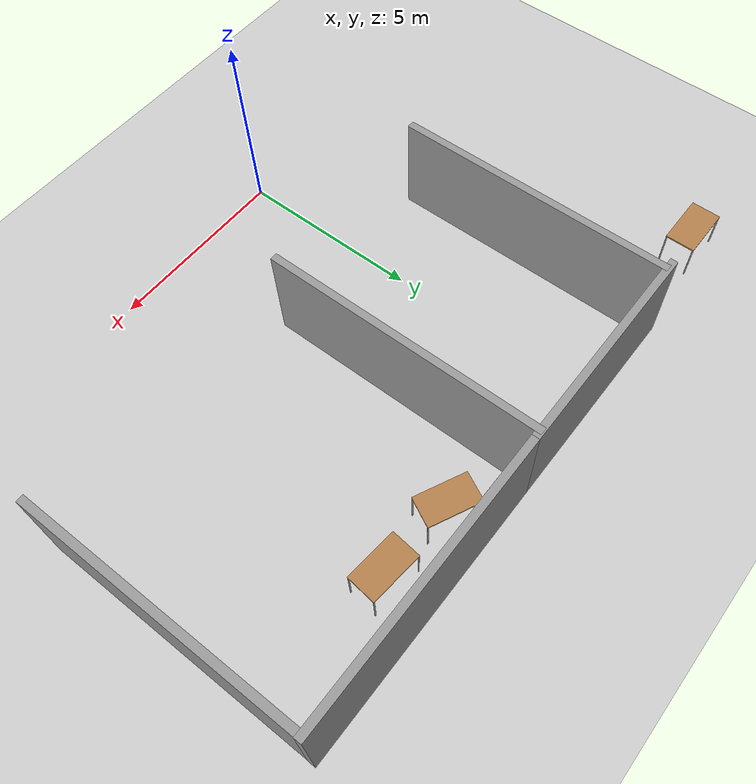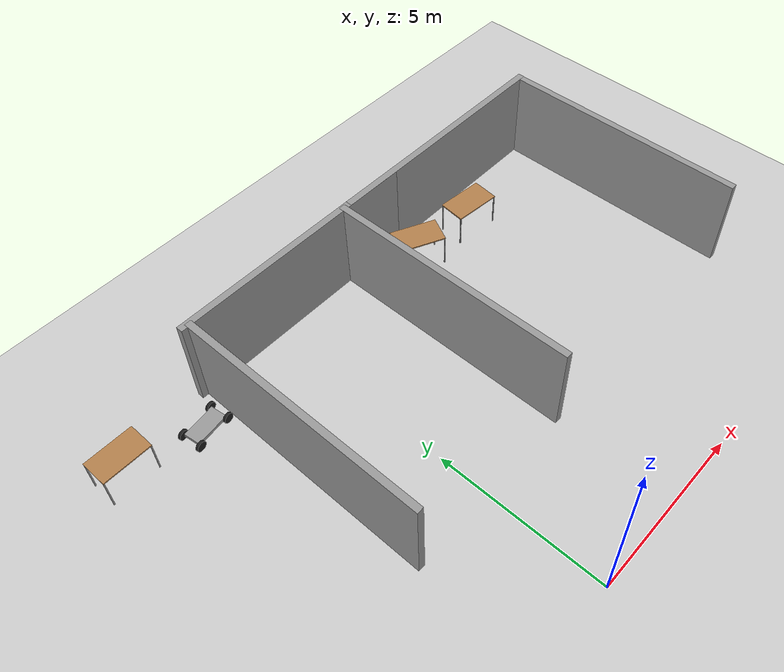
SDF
<sdf version="1.6">
 <world name="default">
  <model name="ground_plane">
   <static>1</static>
   <link name="link">
    <collision name="collision">
     <geometry><plane><normal>0 0 1</normal><size>100 100</size></plane></geometry>
     <surface><friction><ode><mu>100</mu><mu2>50</mu2></ode></friction></surface>
    </collision>
    <visual name="visual">
     <cast_shadows>0</cast_shadows>
     <geometry><plane><normal>0 0 1</normal><size>100 100</size></plane></geometry>
     <material>
      <script><uri>file://media/materials/scripts/gazebo.material</uri><name>Gazebo/Grey</name></script>
     </material>
    </visual>
   </link>
  </model>
  <model name="grey_wall_clone">
   <static>1</static>
   <link name="link">
    <pose>0 0 1.4 0 -0 0</pose>
    <collision name="collision"><geometry><box><size>7.5 0.2 2.8</size></box></geometry></collision>
    <visual name="visual">
     <cast_shadows>0</cast_shadows>
     <geometry><box><size>7.5 0.2 2.8</size></box></geometry>
     <material>
      <script>
       <uri>model://grey_wall/materials/scripts</uri>
       <uri>model://grey_wall/materials/textures</uri>
       <name>vrc/grey_wall</name>
      </script>
     </material>
    </visual>
   </link>
   <pose>1.00661 10.9168 -0.00011 0 -0 0</pose>
  </model>
  <model name="grey_wall_clone_0">
   <static>1</static>
   <link name="link">
    <pose>0 0 1.4 0 -0 0</pose>
    <collision name="collision"><geometry><box><size>7.5 0.2 2.8</size></box></geometry></collision>
    <visual name="visual">
     <cast_shadows>0</cast_shadows>
     <geometry><box><size>7.5 0.2 2.8</size></box></geometry>
     <material>
      <script>
       <uri>model://grey_wall/materials/scripts</uri>
       <uri>model://grey_wall/materials/textures</uri>
       <name>vrc/grey_wall</name>
      </script>
     </material>
    </visual>
   </link>
   <pose>6.74015 10.9183 0 0 -0 0</pose>
  </model>
  <model name="grey_wall_clone_1_clone_0">
   <static>1</static>
   <link name="link">
    <pose>0 0 1.4 0 -0 0</pose>
    <collision name="collision"><geometry><box><size>7.5 0.2 2.8</size></box></geometry></collision>
    <visual name="visual">
     <cast_shadows>0</cast_shadows>
     <geometry><box><size>7.5 0.2 2.8</size></box></geometry>
     <material>
      <script>
       <uri>model://grey_wall/materials/scripts</uri>
       <uri>model://grey_wall/materials/textures</uri>
       <name>vrc/grey_wall</name>
      </script>
     </material>
    </visual>
   </link>
   <pose>10.4003 7.24302 0 0 0 -1.56602</pose>
  </model>
  <model name="grey_wall_clone_1_clone_0_clone_1">
   <static>1</static>
   <link name="link">
    <pose>0 0 1.4 0 -0 0</pose>
    <collision name="collision"><geometry><box><size>7.5 0.2 2.8</size></box></geometry></collision>
    <visual name="visual">
     <cast_shadows>0</cast_shadows>
     <geometry><box><size>7.5 0.2 2.8</size></box></geometry>
     <material>
      <script>
       <uri>model://grey_wall/materials/scripts</uri>
       <uri>model://grey_wall/materials/textures</uri>
       <name>vrc/grey_wall</name>
      </script>
     </material>
    </visual>
   </link>
   <pose>-2.44809 7.18884 0 0 0 -1.56602</pose>
  </model>
  <model name="grey_wall_clone_1_clone_0_clone_1_clone">
   <static>1</static>
   <link name="link">
    <pose>0 0 1.4 0 -0 0</pose>
    <collision name="collision"><geometry><box><size>7.5 0.2 2.8</size></box></geometry></collision>
    <visual name="visual">
     <cast_shadows>0</cast_shadows>
     <geometry><box><size>7.5 0.2 2.8</size></box></geometry>
     <material>
      <script>
       <uri>model://grey_wall/materials/scripts</uri>
       <uri>model://grey_wall/materials/textures</uri>
       <name>vrc/grey_wall</name>
      </script>
     </material>
    </visual>
   </link>
   <pose>2.80527 7.23087 0 0 0 -1.56602</pose>
  </model>
  <model name="table_clone_4">
   <static>0</static>
   <link name="link">
    <collision name="surface">
     <pose>0 0 1 0 -0 0</pose>
     <geometry><box><size>1.5 0.8 0.03</size></box></geometry>
     <surface><friction><ode><mu>0.6</mu><mu2>0.6</mu2></ode></friction></surface>
    </collision>
    <visual name="visual1">
     <pose>0 0 1 0 -0 0</pose>
     <geometry><box><size>1.4 0.8 0.04</size></box></geometry>
     <material>
      <script><uri>file://media/materials/scripts/gazebo.material</uri><name>Gazebo/Wood</name></script>
     </material>
    </visual>
    <collision name="front_left_leg">
     <pose>0.68 0.38 0.5 0 -0 0</pose>
     <geometry><cylinder><radius>0.02</radius><length>1</length></cylinder></geometry>
    </collision>
    <visual name="front_left_leg">
     <pose>0.68 0.38 0.5 0 -0 0</pose>
     <geometry><cylinder><radius>0.02</radius><length>1</length></cylinder></geometry>
     <material>
      <script><uri>file://media/materials/scripts/gazebo.material</uri><name>Gazebo/Grey</name></script>
     </material>
    </visual>
    <collision name="front_right_leg">
     <pose>0.68 -0.38 0.5 0 -0 0</pose>
     <geometry><cylinder><radius>0.02</radius><length>1</length></cylinder></geometry>
    </collision>
    <visual name="front_right_leg">
     <pose>0.68 -0.38 0.5 0 -0 0</pose>
     <geometry><cylinder><radius>0.02</radius><length>1</length></cylinder></geometry>
     <material>
      <script><uri>file://media/materials/scripts/gazebo.material</uri><name>Gazebo/Grey</name></script>
     </material>
    </visual>
    <collision name="back_right_leg">
     <pose>-0.68 -0.38 0.5 0 -0 0</pose>
     <geometry><cylinder><radius>0.02</radius><length>1</length></cylinder></geometry>
    </collision>
    <visual name="back_right_leg">
     <pose>-0.68 -0.38 0.5 0 -0 0</pose>
     <geometry><cylinder><radius>0.02</radius><length>1</length></cylinder></geometry>
     <material>
      <script><uri>file://media/materials/scripts/gazebo.material</uri><name>Gazebo/Grey</name></script>
     </material>
    </visual>
    <collision name="back_left_leg">
     <pose>-0.68 0.38 0.5 0 -0 0</pose>
     <geometry><cylinder><radius>0.02</radius><length>1</length></cylinder></geometry>
    </collision>
    <visual name="back_left_leg">
     <pose>-0.68 0.38 0.5 0 -0 0</pose>
     <geometry><cylinder><radius>0.02</radius><length>1</length></cylinder></geometry>
     <material>
      <script><uri>file://media/materials/scripts/gazebo.material</uri><name>Gazebo/Grey</name></script>
     </material>
    </visual>
    <inertial>
     <inertia><ixx>1</ixx><ixy>0</ixy><ixz>0</ixz><iyy>1</iyy><iyz>0</iyz><izz>1</izz></inertia>
     <mass>1</mass>
    </inertial>
   </link>
   <pose>4.58626 9.89882 -3e-06 -1e-06 3e-06 -0.451145</pose>
  </model>
  <model name="table_clone_5">
   <static>0</static>
   <link name="link">
    <collision name="surface">
     <pose>0 0 1 0 -0 0</pose>
     <geometry><box><size>1.5 0.8 0.03</size></box></geometry>
     <surface><friction><ode><mu>0.6</mu><mu2>0.6</mu2></ode></friction></surface>
    </collision>
    <visual name="visual1">
     <pose>0 0 1 0 -0 0</pose>
     <geometry><box><size>1.4 0.8 0.04</size></box></geometry>
     <material>
      <script><uri>file://media/materials/scripts/gazebo.material</uri><name>Gazebo/Wood</name></script>
     </material>
    </visual>
    <collision name="front_left_leg">
     <pose>0.68 0.38 0.5 0 -0 0</pose>
     <geometry><cylinder><radius>0.02</radius><length>1</length></cylinder></geometry>
    </collision>
    <visual name="front_left_leg">
     <pose>0.68 0.38 0.5 0 -0 0</pose>
     <geometry><cylinder><radius>0.02</radius><length>1</length></cylinder></geometry>
     <material>
      <script><uri>file://media/materials/scripts/gazebo.material</uri><name>Gazebo/Grey</name></script>
     </material>
    </visual>
    <collision name="front_right_leg">
     <pose>0.68 -0.38 0.5 0 -0 0</pose>
     <geometry><cylinder><radius>0.02</radius><length>1</length></cylinder></geometry>
    </collision>
    <visual name="front_right_leg">
     <pose>0.68 -0.38 0.5 0 -0 0</pose>
     <geometry><cylinder><radius>0.02</radius><length>1</length></cylinder></geometry>
     <material>
      <script><uri>file://media/materials/scripts/gazebo.material</uri><name>Gazebo/Grey</name></script>
     </material>
    </visual>
    <collision name="back_right_leg">
     <pose>-0.68 -0.38 0.5 0 -0 0</pose>
     <geometry><cylinder><radius>0.02</radius><length>1</length></cylinder></geometry>
    </collision>
    <visual name="back_right_leg">
     <pose>-0.68 -0.38 0.5 0 -0 0</pose>
     <geometry><cylinder><radius>0.02</radius><length>1</length></cylinder></geometry>
     <material>
      <script><uri>file://media/materials/scripts/gazebo.material</uri><name>Gazebo/Grey</name></script>
     </material>
    </visual>
    <collision name="back_left_leg">
     <pose>-0.68 0.38 0.5 0 -0 0</pose>
     <geometry><cylinder><radius>0.02</radius><length>1</length></cylinder></geometry>
    </collision>
    <visual name="back_left_leg">
     <pose>-0.68 0.38 0.5 0 -0 0</pose>
     <geometry><cylinder><radius>0.02</radius><length>1</length></cylinder></geometry>
     <material>
      <script><uri>file://media/materials/scripts/gazebo.material</uri><name>Gazebo/Grey</name></script>
     </material>
    </visual>
    <inertial>
     <inertia><ixx>1</ixx><ixy>0</ixy><ixz>0</ixz><iyy>1</iyy><iyz>0</iyz><izz>1</izz></inertia>
     <mass>1</mass>
    </inertial>
   </link>
   <pose>6.64272 9.72922 -2e-06 -1e-06 -0 -0.101108</pose>
  </model>
  <model name="cart_front_steer">
   <link name="chassis">
    <pose>0 0 0.15 0 -0 0</pose>
    <inertial>
     <pose>0.1 0 0 0 -0 0</pose>
     <mass>10</mass>
     <inertia>
      <ixx>0.216667</ixx>
      <iyy>0.841667</iyy>
      <izz>1.04167</izz>
      <ixy>0</ixy>
      <ixz>0</ixz>
      <iyz>0</iyz>
     </inertia>
    </inertial>
    <collision name="collision"><geometry><box><size>1 0.5 0.1</size></box></geometry></collision>
    <visual name="visual">
     <geometry><box><size>1 0.5 0.1</size></box></geometry>
     <material>
      <script><uri>file://media/materials/scripts/gazebo.material</uri><name>Gazebo/Grey</name></script>
     </material>
    </visual>
   </link>
   <link name="wheel_front_left">
    <pose>0.5 0.298 0.15 -1.5708 -0.087266 0</pose>
    <inertial>
     <mass>0.5</mass>
     <inertia>
      <ixx>0.00307917</ixx>
      <iyy>0.00307917</iyy>
      <izz>0.005625</izz>
      <ixy>0</ixy>
      <ixz>0</ixz>
      <iyz>0</iyz>
     </inertia>
    </inertial>
    <collision name="collision">
     <geometry><cylinder><radius>0.15</radius><length>0.08</length></cylinder></geometry>
    </collision>
    <visual name="visual">
     <geometry><cylinder><radius>0.15</radius><length>0.08</length></cylinder></geometry>
     <material>
      <script><uri>file://media/materials/scripts/gazebo.material</uri><name>Gazebo/Black</name></script>
     </material>
    </visual>
   </link>
   <joint name="wheel_front_left_steer_spin" type="universal">
    <parent>chassis</parent>
    <child>wheel_front_left</child>
    <axis>
     <xyz>0 -1 0</xyz>
     <limit><lower>-0.610865</lower><upper>0.610865</upper></limit>
     <use_parent_model_frame>0</use_parent_model_frame>
     <dynamics><spring_reference>0</spring_reference><spring_stiffness>0</spring_stiffness></dynamics>
    </axis>
    <axis2>
     <xyz>0 0 1</xyz>
     <use_parent_model_frame>0</use_parent_model_frame>
     <dynamics><spring_reference>0</spring_reference><spring_stiffness>0</spring_stiffness></dynamics>
    </axis2>
   </joint>
   <link name="wheel_front_right">
    <pose>0.5 -0.298 0.15 -1.5708 -0.087266 0</pose>
    <inertial>
     <mass>0.5</mass>
     <inertia>
      <ixx>0.00307917</ixx>
      <iyy>0.00307917</iyy>
      <izz>0.005625</izz>
      <ixy>0</ixy>
      <ixz>0</ixz>
      <iyz>0</iyz>
     </inertia>
    </inertial>
    <collision name="collision">
     <geometry><cylinder><radius>0.15</radius><length>0.08</length></cylinder></geometry>
    </collision>
    <visual name="visual">
     <geometry><cylinder><radius>0.15</radius><length>0.08</length></cylinder></geometry>
     <material>
      <script><uri>file://media/materials/scripts/gazebo.material</uri><name>Gazebo/Black</name></script>
     </material>
    </visual>
   </link>
   <joint name="wheel_front_right_steer_spin" type="universal">
    <parent>chassis</parent>
    <child>wheel_front_right</child>
    <axis>
     <xyz>0 -1 0</xyz>
     <limit><lower>-0.610865</lower><upper>0.610865</upper></limit>
     <use_parent_model_frame>0</use_parent_model_frame>
     <dynamics><spring_reference>0</spring_reference><spring_stiffness>0</spring_stiffness></dynamics>
    </axis>
    <axis2>
     <xyz>0 0 1</xyz>
     <use_parent_model_frame>0</use_parent_model_frame>
     <dynamics><spring_reference>0</spring_reference><spring_stiffness>0</spring_stiffness></dynamics>
    </axis2>
   </joint>
   <link name="wheel_rear_left">
    <pose>-0.5 0.298 0.15 -1.5708 0 0</pose>
    <inertial>
     <mass>0.5</mass>
     <inertia>
      <ixx>0.00307917</ixx>
      <iyy>0.00307917</iyy>
      <izz>0.005625</izz>
      <ixy>0</ixy>
      <ixz>0</ixz>
      <iyz>0</iyz>
     </inertia>
    </inertial>
    <collision name="collision">
     <geometry><cylinder><radius>0.15</radius><length>0.08</length></cylinder></geometry>
    </collision>
    <visual name="visual">
     <geometry><cylinder><radius>0.15</radius><length>0.08</length></cylinder></geometry>
     <material>
      <script><uri>file://media/materials/scripts/gazebo.material</uri><name>Gazebo/Black</name></script>
     </material>
    </visual>
   </link>
   <joint name="wheel_rear_left_spin" type="revolute">
    <parent>chassis</parent>
    <child>wheel_rear_left</child>
    <axis>
     <xyz>0 0 1</xyz>
     <use_parent_model_frame>0</use_parent_model_frame>
     <limit><lower>-1e+16</lower><upper>1e+16</upper></limit>
     <dynamics><spring_reference>0</spring_reference><spring_stiffness>0</spring_stiffness></dynamics>
    </axis>
   </joint>
   <link name="wheel_rear_right">
    <pose>-0.5 -0.298 0.15 -1.5708 0 0</pose>
    <inertial>
     <mass>0.5</mass>
     <inertia>
      <ixx>0.00307917</ixx>
      <iyy>0.00307917</iyy>
      <izz>0.005625</izz>
      <ixy>0</ixy>
      <ixz>0</ixz>
      <iyz>0</iyz>
     </inertia>
    </inertial>
    <collision name="collision">
     <geometry><cylinder><radius>0.15</radius><length>0.08</length></cylinder></geometry>
    </collision>
    <visual name="visual">
     <geometry><cylinder><radius>0.15</radius><length>0.08</length></cylinder></geometry>
     <material>
      <script><uri>file://media/materials/scripts/gazebo.material</uri><name>Gazebo/Black</name></script>
     </material>
    </visual>
   </link>
   <joint name="wheel_rear_right_spin" type="revolute">
    <parent>chassis</parent>
    <child>wheel_rear_right</child>
    <axis>
     <xyz>0 0 1</xyz>
     <use_parent_model_frame>0</use_parent_model_frame>
     <limit><lower>-1e+16</lower><upper>1e+16</upper></limit>
     <dynamics><spring_reference>0</spring_reference><spring_stiffness>0</spring_stiffness></dynamics>
    </axis>
   </joint>
   <pose>-3.29647 10.0085 2e-06 -1e-06 -1e-06 0.136675</pose>
  </model>
  <model name="table_clone_2">
   <static>0</static>
   <link name="link">
    <collision name="surface">
     <pose>0 0 1 0 -0 0</pose>
     <geometry><box><size>1.5 0.8 0.03</size></box></geometry>
     <surface><friction><ode><mu>0.6</mu><mu2>0.6</mu2></ode></friction></surface>
    </collision>
    <visual name="visual1">
     <pose>0 0 1 0 -0 0</pose>
     <geometry><box><size>1.4 0.8 0.04</size></box></geometry>
     <material>
      <script><uri>file://media/materials/scripts/gazebo.material</uri><name>Gazebo/Wood</name></script>
     </material>
    </visual>
    <collision name="front_left_leg">
     <pose>0.68 0.38 0.5 0 -0 0</pose>
     <geometry><cylinder><radius>0.02</radius><length>1</length></cylinder></geometry>
    </collision>
    <visual name="front_left_leg">
     <pose>0.68 0.38 0.5 0 -0 0</pose>
     <geometry><cylinder><radius>0.02</radius><length>1</length></cylinder></geometry>
     <material>
      <script><uri>file://media/materials/scripts/gazebo.material</uri><name>Gazebo/Grey</name></script>
     </material>
    </visual>
    <collision name="front_right_leg">
     <pose>0.68 -0.38 0.5 0 -0 0</pose>
     <geometry><cylinder><radius>0.02</radius><length>1</length></cylinder></geometry>
    </collision>
    <visual name="front_right_leg">
     <pose>0.68 -0.38 0.5 0 -0 0</pose>
     <geometry><cylinder><radius>0.02</radius><length>1</length></cylinder></geometry>
     <material>
      <script><uri>file://media/materials/scripts/gazebo.material</uri><name>Gazebo/Grey</name></script>
     </material>
    </visual>
    <collision name="back_right_leg">
     <pose>-0.68 -0.38 0.5 0 -0 0</pose>
     <geometry><cylinder><radius>0.02</radius><length>1</length></cylinder></geometry>
    </collision>
    <visual name="back_right_leg">
     <pose>-0.68 -0.38 0.5 0 -0 0</pose>
     <geometry><cylinder><radius>0.02</radius><length>1</length></cylinder></geometry>
     <material>
      <script><uri>file://media/materials/scripts/gazebo.material</uri><name>Gazebo/Grey</name></script>
     </material>
    </visual>
    <collision name="back_left_leg">
     <pose>-0.68 0.38 0.5 0 -0 0</pose>
     <geometry><cylinder><radius>0.02</radius><length>1</length></cylinder></geometry>
    </collision>
    <visual name="back_left_leg">
     <pose>-0.68 0.38 0.5 0 -0 0</pose>
     <geometry><cylinder><radius>0.02</radius><length>1</length></cylinder></geometry>
     <material>
      <script><uri>file://media/materials/scripts/gazebo.material</uri><name>Gazebo/Grey</name></script>
     </material>
    </visual>
    <inertial>
     <inertia><ixx>1</ixx><ixy>0</ixy><ixz>0</ixz><iyy>1</iyy><iyz>0</iyz><izz>1</izz></inertia>
     <mass>1</mass>
    </inertial>
   </link>
   <pose>-5.43623 10.4124 -2e-06 -1e-06 3e-06 3e-06</pose>
  </model>
 </world>
</sdf>
